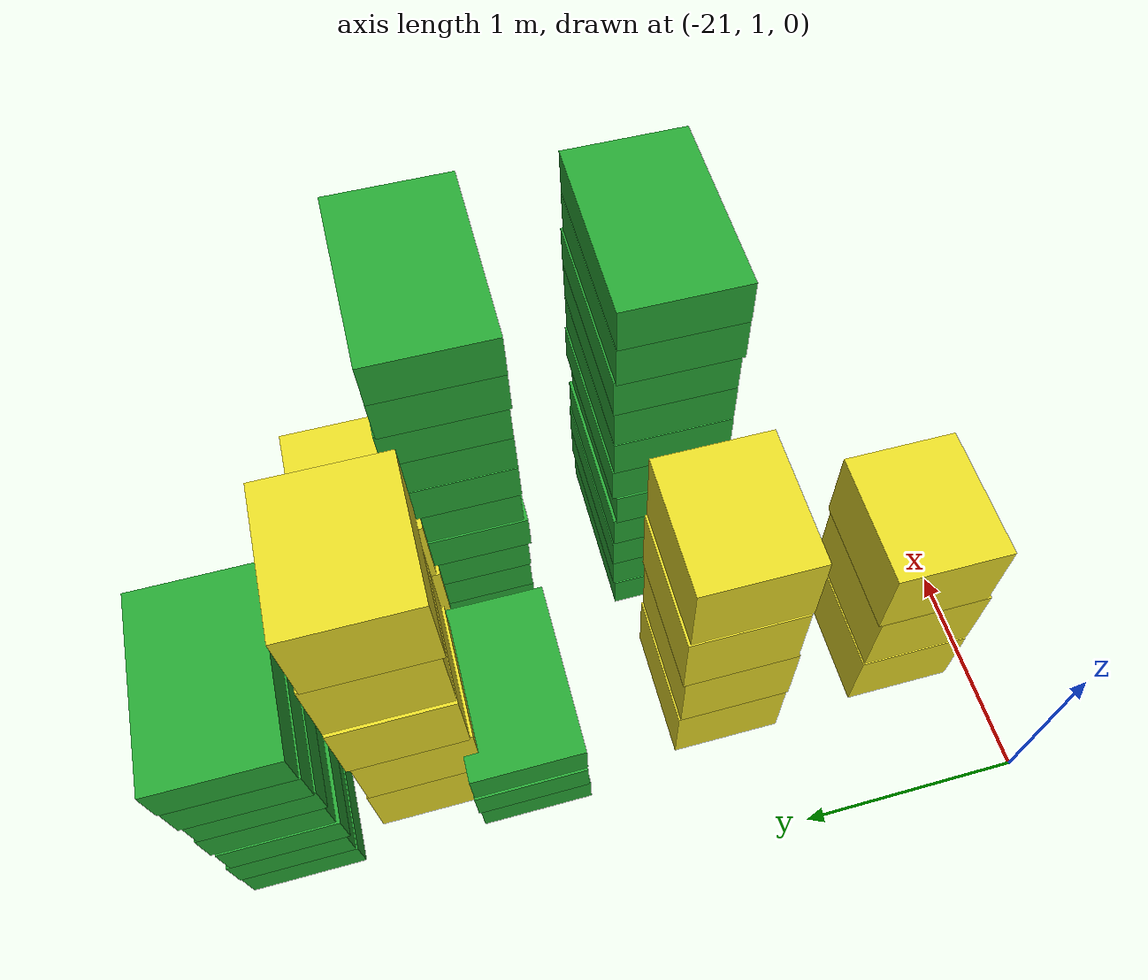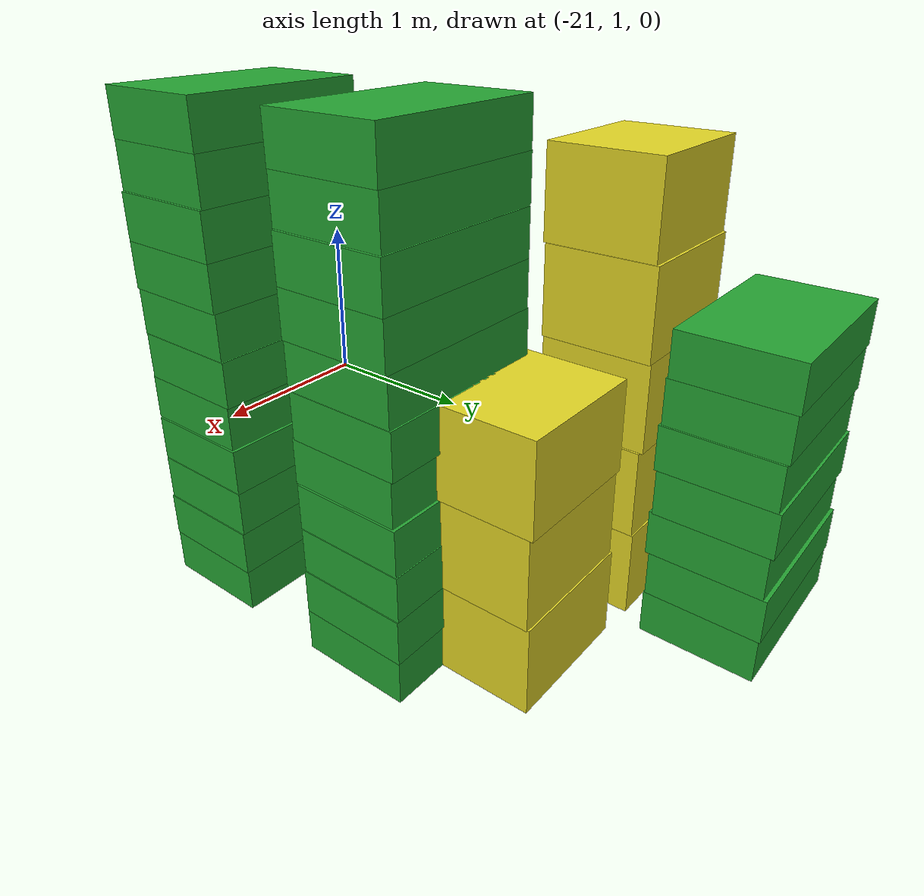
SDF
<sdf version="1.4">
 <model name="factory_baggage_group_A">
  <model name="baggage_C_x3_2">
   <model name="baggage_C_0">
    <static>1</static>
    <link name="link">
     <collision name="collision"><geometry><box><size>0.6 0.5 0.4</size></box></geometry></collision>
     <visual name="visual">
      <geometry><box><size>0.6 0.5 0.4</size></box></geometry>
      <material>
       <script><uri>file://media/materials/scripts/gazebo.material</uri><name>Gazebo/Yellow</name></script>
      </material>
     </visual>
    </link>
    <pose>0 0 0.2 0 -0 0</pose>
   </model>
   <model name="baggage_C_1">
    <static>1</static>
    <link name="link">
     <collision name="collision"><geometry><box><size>0.6 0.5 0.4</size></box></geometry></collision>
     <visual name="visual">
      <geometry><box><size>0.6 0.5 0.4</size></box></geometry>
      <material>
       <script><uri>file://media/materials/scripts/gazebo.material</uri><name>Gazebo/Yellow</name></script>
      </material>
     </visual>
    </link>
    <pose>0.0062 -0.0069 0.6 0 -0 0</pose>
   </model>
   <model name="baggage_C_2">
    <static>1</static>
    <link name="link">
     <collision name="collision"><geometry><box><size>0.6 0.5 0.4</size></box></geometry></collision>
     <visual name="visual">
      <geometry><box><size>0.6 0.5 0.4</size></box></geometry>
      <material>
       <script><uri>file://media/materials/scripts/gazebo.material</uri><name>Gazebo/Yellow</name></script>
      </material>
     </visual>
    </link>
    <pose>0.0089 0.0083 1 0 -0 0</pose>
   </model>
   <pose>-20.1926 1.35849 0 0 -0 0</pose>
  </model>
  <model name="baggage_C_x4_0">
   <model name="baggage_C_0">
    <static>1</static>
    <link name="link">
     <collision name="collision"><geometry><box><size>0.6 0.5 0.4</size></box></geometry></collision>
     <visual name="visual">
      <geometry><box><size>0.6 0.5 0.4</size></box></geometry>
      <material>
       <script><uri>file://media/materials/scripts/gazebo.material</uri><name>Gazebo/Yellow</name></script>
      </material>
     </visual>
    </link>
    <pose>0 0 0.2 0 -0 0</pose>
   </model>
   <model name="baggage_C_1">
    <static>1</static>
    <link name="link">
     <collision name="collision"><geometry><box><size>0.6 0.5 0.4</size></box></geometry></collision>
     <visual name="visual">
      <geometry><box><size>0.6 0.5 0.4</size></box></geometry>
      <material>
       <script><uri>file://media/materials/scripts/gazebo.material</uri><name>Gazebo/Yellow</name></script>
      </material>
     </visual>
    </link>
    <pose>0.0008 -0.0083 0.6 0 -0 0</pose>
   </model>
   <model name="baggage_C_2">
    <static>1</static>
    <link name="link">
     <collision name="collision"><geometry><box><size>0.6 0.5 0.4</size></box></geometry></collision>
     <visual name="visual">
      <geometry><box><size>0.6 0.5 0.4</size></box></geometry>
      <material>
       <script><uri>file://media/materials/scripts/gazebo.material</uri><name>Gazebo/Yellow</name></script>
      </material>
     </visual>
    </link>
    <pose>0.0001 0.0014 1 0 -0 0</pose>
   </model>
   <model name="baggage_C_3">
    <static>1</static>
    <link name="link">
     <collision name="collision"><geometry><box><size>0.6 0.5 0.4</size></box></geometry></collision>
     <visual name="visual">
      <geometry><box><size>0.6 0.5 0.4</size></box></geometry>
      <material>
       <script><uri>file://media/materials/scripts/gazebo.material</uri><name>Gazebo/Yellow</name></script>
      </material>
     </visual>
    </link>
    <pose>0.007 -0.0089 1.4 0 -0 0</pose>
   </model>
   <pose>-20.2232 2.23903 0 0 -0 0</pose>
  </model>
  <model name="baggage_D_x11">
   <model name="baggage_D_0">
    <static>1</static>
    <link name="link">
     <collision name="collision"><geometry><box><size>0.8 0.5 0.2</size></box></geometry></collision>
     <visual name="visual">
      <geometry><box><size>0.8 0.5 0.2</size></box></geometry>
      <material>
       <script><uri>file://media/materials/scripts/gazebo.material</uri><name>Gazebo/Green</name></script>
      </material>
     </visual>
    </link>
    <pose>0 0 0.1 0 -0 0</pose>
   </model>
   <model name="baggage_D_1">
    <static>1</static>
    <link name="link">
     <collision name="collision"><geometry><box><size>0.8 0.5 0.2</size></box></geometry></collision>
     <visual name="visual">
      <geometry><box><size>0.8 0.5 0.2</size></box></geometry>
      <material>
       <script><uri>file://media/materials/scripts/gazebo.material</uri><name>Gazebo/Green</name></script>
      </material>
     </visual>
    </link>
    <pose>0.0069 0.0078 0.3 0 -0 0</pose>
   </model>
   <model name="baggage_D_2">
    <static>1</static>
    <link name="link">
     <collision name="collision"><geometry><box><size>0.8 0.5 0.2</size></box></geometry></collision>
     <visual name="visual">
      <geometry><box><size>0.8 0.5 0.2</size></box></geometry>
      <material>
       <script><uri>file://media/materials/scripts/gazebo.material</uri><name>Gazebo/Green</name></script>
      </material>
     </visual>
    </link>
    <pose>0.0035 0.01 0.5 0 -0 0</pose>
   </model>
   <model name="baggage_D_3">
    <static>1</static>
    <link name="link">
     <collision name="collision"><geometry><box><size>0.8 0.5 0.2</size></box></geometry></collision>
     <visual name="visual">
      <geometry><box><size>0.8 0.5 0.2</size></box></geometry>
      <material>
       <script><uri>file://media/materials/scripts/gazebo.material</uri><name>Gazebo/Green</name></script>
      </material>
     </visual>
    </link>
    <pose>0.0009 0.0056 0.7 0 -0 0</pose>
   </model>
   <model name="baggage_D_4">
    <static>1</static>
    <link name="link">
     <collision name="collision"><geometry><box><size>0.8 0.5 0.2</size></box></geometry></collision>
     <visual name="visual">
      <geometry><box><size>0.8 0.5 0.2</size></box></geometry>
      <material>
       <script><uri>file://media/materials/scripts/gazebo.material</uri><name>Gazebo/Green</name></script>
      </material>
     </visual>
    </link>
    <pose>-0.0074 -0.0079 0.9 0 -0 0</pose>
   </model>
   <model name="baggage_D_5">
    <static>1</static>
    <link name="link">
     <collision name="collision"><geometry><box><size>0.8 0.5 0.2</size></box></geometry></collision>
     <visual name="visual">
      <geometry><box><size>0.8 0.5 0.2</size></box></geometry>
      <material>
       <script><uri>file://media/materials/scripts/gazebo.material</uri><name>Gazebo/Green</name></script>
      </material>
     </visual>
    </link>
    <pose>0.0011 0.0099 1.1 0 -0 0</pose>
   </model>
   <model name="baggage_D_6">
    <static>1</static>
    <link name="link">
     <collision name="collision"><geometry><box><size>0.8 0.5 0.2</size></box></geometry></collision>
     <visual name="visual">
      <geometry><box><size>0.8 0.5 0.2</size></box></geometry>
      <material>
       <script><uri>file://media/materials/scripts/gazebo.material</uri><name>Gazebo/Green</name></script>
      </material>
     </visual>
    </link>
    <pose>-0.0009 0.0022 1.3 0 -0 0</pose>
   </model>
   <model name="baggage_D_7">
    <static>1</static>
    <link name="link">
     <collision name="collision"><geometry><box><size>0.8 0.5 0.2</size></box></geometry></collision>
     <visual name="visual">
      <geometry><box><size>0.8 0.5 0.2</size></box></geometry>
      <material>
       <script><uri>file://media/materials/scripts/gazebo.material</uri><name>Gazebo/Green</name></script>
      </material>
     </visual>
    </link>
    <pose>0.0046 0.0014 1.5 0 -0 0</pose>
   </model>
   <model name="baggage_D_8">
    <static>1</static>
    <link name="link">
     <collision name="collision"><geometry><box><size>0.8 0.5 0.2</size></box></geometry></collision>
     <visual name="visual">
      <geometry><box><size>0.8 0.5 0.2</size></box></geometry>
      <material>
       <script><uri>file://media/materials/scripts/gazebo.material</uri><name>Gazebo/Green</name></script>
      </material>
     </visual>
    </link>
    <pose>0.0052 0.0021 1.7 0 -0 0</pose>
   </model>
   <model name="baggage_D_9">
    <static>1</static>
    <link name="link">
     <collision name="collision"><geometry><box><size>0.8 0.5 0.2</size></box></geometry></collision>
     <visual name="visual">
      <geometry><box><size>0.8 0.5 0.2</size></box></geometry>
      <material>
       <script><uri>file://media/materials/scripts/gazebo.material</uri><name>Gazebo/Green</name></script>
      </material>
     </visual>
    </link>
    <pose>-0.0068 -0.0054 1.9 0 -0 0</pose>
   </model>
   <model name="baggage_D_10">
    <static>1</static>
    <link name="link">
     <collision name="collision"><geometry><box><size>0.8 0.5 0.2</size></box></geometry></collision>
     <visual name="visual">
      <geometry><box><size>0.8 0.5 0.2</size></box></geometry>
      <material>
       <script><uri>file://media/materials/scripts/gazebo.material</uri><name>Gazebo/Green</name></script>
      </material>
     </visual>
    </link>
    <pose>-0.0064 -0.0067 2.1 0 -0 0</pose>
   </model>
   <pose>-19.2962 2.30348 0 0 -0 0</pose>
  </model>
  <model name="baggage_D_x3_2">
   <model name="baggage_D_0">
    <static>1</static>
    <link name="link">
     <collision name="collision"><geometry><box><size>0.8 0.5 0.2</size></box></geometry></collision>
     <visual name="visual">
      <geometry><box><size>0.8 0.5 0.2</size></box></geometry>
      <material>
       <script><uri>file://media/materials/scripts/gazebo.material</uri><name>Gazebo/Green</name></script>
      </material>
     </visual>
    </link>
    <pose>0 0 0.1 0 -0 0</pose>
   </model>
   <model name="baggage_D_1">
    <static>1</static>
    <link name="link">
     <collision name="collision"><geometry><box><size>0.8 0.5 0.2</size></box></geometry></collision>
     <visual name="visual">
      <geometry><box><size>0.8 0.5 0.2</size></box></geometry>
      <material>
       <script><uri>file://media/materials/scripts/gazebo.material</uri><name>Gazebo/Green</name></script>
      </material>
     </visual>
    </link>
    <pose>-0.0056 0.0083 0.3 0 -0 0</pose>
   </model>
   <model name="baggage_D_2">
    <static>1</static>
    <link name="link">
     <collision name="collision"><geometry><box><size>0.8 0.5 0.2</size></box></geometry></collision>
     <visual name="visual">
      <geometry><box><size>0.8 0.5 0.2</size></box></geometry>
      <material>
       <script><uri>file://media/materials/scripts/gazebo.material</uri><name>Gazebo/Green</name></script>
      </material>
     </visual>
    </link>
    <pose>0.0053 0.0057 0.5 0 -0 0</pose>
   </model>
   <pose>-20.2273 3.1731 0 0 -0 0</pose>
  </model>
  <model name="baggage_D_x11_0">
   <model name="baggage_D_0">
    <static>1</static>
    <link name="link">
     <collision name="collision"><geometry><box><size>0.8 0.5 0.2</size></box></geometry></collision>
     <visual name="visual">
      <geometry><box><size>0.8 0.5 0.2</size></box></geometry>
      <material>
       <script><uri>file://media/materials/scripts/gazebo.material</uri><name>Gazebo/Green</name></script>
      </material>
     </visual>
    </link>
    <pose>0 0 0.1 0 -0 0</pose>
   </model>
   <model name="baggage_D_1">
    <static>1</static>
    <link name="link">
     <collision name="collision"><geometry><box><size>0.8 0.5 0.2</size></box></geometry></collision>
     <visual name="visual">
      <geometry><box><size>0.8 0.5 0.2</size></box></geometry>
      <material>
       <script><uri>file://media/materials/scripts/gazebo.material</uri><name>Gazebo/Green</name></script>
      </material>
     </visual>
    </link>
    <pose>0.0069 0.0078 0.3 0 -0 0</pose>
   </model>
   <model name="baggage_D_2">
    <static>1</static>
    <link name="link">
     <collision name="collision"><geometry><box><size>0.8 0.5 0.2</size></box></geometry></collision>
     <visual name="visual">
      <geometry><box><size>0.8 0.5 0.2</size></box></geometry>
      <material>
       <script><uri>file://media/materials/scripts/gazebo.material</uri><name>Gazebo/Green</name></script>
      </material>
     </visual>
    </link>
    <pose>0.0035 0.01 0.5 0 -0 0</pose>
   </model>
   <model name="baggage_D_3">
    <static>1</static>
    <link name="link">
     <collision name="collision"><geometry><box><size>0.8 0.5 0.2</size></box></geometry></collision>
     <visual name="visual">
      <geometry><box><size>0.8 0.5 0.2</size></box></geometry>
      <material>
       <script><uri>file://media/materials/scripts/gazebo.material</uri><name>Gazebo/Green</name></script>
      </material>
     </visual>
    </link>
    <pose>0.0009 0.0056 0.7 0 -0 0</pose>
   </model>
   <model name="baggage_D_4">
    <static>1</static>
    <link name="link">
     <collision name="collision"><geometry><box><size>0.8 0.5 0.2</size></box></geometry></collision>
     <visual name="visual">
      <geometry><box><size>0.8 0.5 0.2</size></box></geometry>
      <material>
       <script><uri>file://media/materials/scripts/gazebo.material</uri><name>Gazebo/Green</name></script>
      </material>
     </visual>
    </link>
    <pose>-0.0074 -0.0079 0.9 0 -0 0</pose>
   </model>
   <model name="baggage_D_5">
    <static>1</static>
    <link name="link">
     <collision name="collision"><geometry><box><size>0.8 0.5 0.2</size></box></geometry></collision>
     <visual name="visual">
      <geometry><box><size>0.8 0.5 0.2</size></box></geometry>
      <material>
       <script><uri>file://media/materials/scripts/gazebo.material</uri><name>Gazebo/Green</name></script>
      </material>
     </visual>
    </link>
    <pose>0.0011 0.0099 1.1 0 -0 0</pose>
   </model>
   <model name="baggage_D_6">
    <static>1</static>
    <link name="link">
     <collision name="collision"><geometry><box><size>0.8 0.5 0.2</size></box></geometry></collision>
     <visual name="visual">
      <geometry><box><size>0.8 0.5 0.2</size></box></geometry>
      <material>
       <script><uri>file://media/materials/scripts/gazebo.material</uri><name>Gazebo/Green</name></script>
      </material>
     </visual>
    </link>
    <pose>-0.0009 0.0022 1.3 0 -0 0</pose>
   </model>
   <model name="baggage_D_7">
    <static>1</static>
    <link name="link">
     <collision name="collision"><geometry><box><size>0.8 0.5 0.2</size></box></geometry></collision>
     <visual name="visual">
      <geometry><box><size>0.8 0.5 0.2</size></box></geometry>
      <material>
       <script><uri>file://media/materials/scripts/gazebo.material</uri><name>Gazebo/Green</name></script>
      </material>
     </visual>
    </link>
    <pose>0.0046 0.0014 1.5 0 -0 0</pose>
   </model>
   <model name="baggage_D_8">
    <static>1</static>
    <link name="link">
     <collision name="collision"><geometry><box><size>0.8 0.5 0.2</size></box></geometry></collision>
     <visual name="visual">
      <geometry><box><size>0.8 0.5 0.2</size></box></geometry>
      <material>
       <script><uri>file://media/materials/scripts/gazebo.material</uri><name>Gazebo/Green</name></script>
      </material>
     </visual>
    </link>
    <pose>0.0052 0.0021 1.7 0 -0 0</pose>
   </model>
   <model name="baggage_D_9">
    <static>1</static>
    <link name="link">
     <collision name="collision"><geometry><box><size>0.8 0.5 0.2</size></box></geometry></collision>
     <visual name="visual">
      <geometry><box><size>0.8 0.5 0.2</size></box></geometry>
      <material>
       <script><uri>file://media/materials/scripts/gazebo.material</uri><name>Gazebo/Green</name></script>
      </material>
     </visual>
    </link>
    <pose>-0.0068 -0.0054 1.9 0 -0 0</pose>
   </model>
   <model name="baggage_D_10">
    <static>1</static>
    <link name="link">
     <collision name="collision"><geometry><box><size>0.8 0.5 0.2</size></box></geometry></collision>
     <visual name="visual">
      <geometry><box><size>0.8 0.5 0.2</size></box></geometry>
      <material>
       <script><uri>file://media/materials/scripts/gazebo.material</uri><name>Gazebo/Green</name></script>
      </material>
     </visual>
    </link>
    <pose>-0.0064 -0.0067 2.1 0 -0 0</pose>
   </model>
   <pose>-19.2952 3.1927 0 0 -0 0</pose>
  </model>
  <model name="baggage_C_x5">
   <model name="baggage_C_0">
    <static>1</static>
    <link name="link">
     <collision name="collision"><geometry><box><size>0.6 0.5 0.4</size></box></geometry></collision>
     <visual name="visual">
      <geometry><box><size>0.6 0.5 0.4</size></box></geometry>
      <material>
       <script><uri>file://media/materials/scripts/gazebo.material</uri><name>Gazebo/Yellow</name></script>
      </material>
     </visual>
    </link>
    <pose>0 0 0.2 0 -0 0</pose>
   </model>
   <model name="baggage_C_1">
    <static>1</static>
    <link name="link">
     <collision name="collision"><geometry><box><size>0.6 0.5 0.4</size></box></geometry></collision>
     <visual name="visual">
      <geometry><box><size>0.6 0.5 0.4</size></box></geometry>
      <material>
       <script><uri>file://media/materials/scripts/gazebo.material</uri><name>Gazebo/Yellow</name></script>
      </material>
     </visual>
    </link>
    <pose>0.0004 -0.0065 0.6 0 -0 0</pose>
   </model>
   <model name="baggage_C_2">
    <static>1</static>
    <link name="link">
     <collision name="collision"><geometry><box><size>0.6 0.5 0.4</size></box></geometry></collision>
     <visual name="visual">
      <geometry><box><size>0.6 0.5 0.4</size></box></geometry>
      <material>
       <script><uri>file://media/materials/scripts/gazebo.material</uri><name>Gazebo/Yellow</name></script>
      </material>
     </visual>
    </link>
    <pose>-0.0097 0.0061 1 0 -0 0</pose>
   </model>
   <model name="baggage_C_3">
    <static>1</static>
    <link name="link">
     <collision name="collision"><geometry><box><size>0.6 0.5 0.4</size></box></geometry></collision>
     <visual name="visual">
      <geometry><box><size>0.6 0.5 0.4</size></box></geometry>
      <material>
       <script><uri>file://media/materials/scripts/gazebo.material</uri><name>Gazebo/Yellow</name></script>
      </material>
     </visual>
    </link>
    <pose>0.0039 0.0077 1.4 0 -0 0</pose>
   </model>
   <model name="baggage_C_4">
    <static>1</static>
    <link name="link">
     <collision name="collision"><geometry><box><size>0.6 0.5 0.4</size></box></geometry></collision>
     <visual name="visual">
      <geometry><box><size>0.6 0.5 0.4</size></box></geometry>
      <material>
       <script><uri>file://media/materials/scripts/gazebo.material</uri><name>Gazebo/Yellow</name></script>
      </material>
     </visual>
    </link>
    <pose>-0.0001 -0.0044 1.8 0 -0 0</pose>
   </model>
   <pose>-20.2035 3.62128 0 0 -0 0</pose>
  </model>
  <model name="baggage_C_x3_3">
   <model name="baggage_C_0">
    <static>1</static>
    <link name="link">
     <collision name="collision"><geometry><box><size>0.6 0.5 0.4</size></box></geometry></collision>
     <visual name="visual">
      <geometry><box><size>0.6 0.5 0.4</size></box></geometry>
      <material>
       <script><uri>file://media/materials/scripts/gazebo.material</uri><name>Gazebo/Yellow</name></script>
      </material>
     </visual>
    </link>
    <pose>0 0 0.2 0 -0 0</pose>
   </model>
   <model name="baggage_C_1">
    <static>1</static>
    <link name="link">
     <collision name="collision"><geometry><box><size>0.6 0.5 0.4</size></box></geometry></collision>
     <visual name="visual">
      <geometry><box><size>0.6 0.5 0.4</size></box></geometry>
      <material>
       <script><uri>file://media/materials/scripts/gazebo.material</uri><name>Gazebo/Yellow</name></script>
      </material>
     </visual>
    </link>
    <pose>0.0062 -0.0069 0.6 0 -0 0</pose>
   </model>
   <model name="baggage_C_2">
    <static>1</static>
    <link name="link">
     <collision name="collision"><geometry><box><size>0.6 0.5 0.4</size></box></geometry></collision>
     <visual name="visual">
      <geometry><box><size>0.6 0.5 0.4</size></box></geometry>
      <material>
       <script><uri>file://media/materials/scripts/gazebo.material</uri><name>Gazebo/Yellow</name></script>
      </material>
     </visual>
    </link>
    <pose>0.0089 0.0083 1 0 -0 0</pose>
   </model>
   <pose>-19.4527 3.60719 0 0 -0 0</pose>
  </model>
  <model name="baggage_B_x5_6">
   <model name="baggage_B_0">
    <static>1</static>
    <link name="link">
     <collision name="collision"><geometry><box><size>0.65 0.45 0.2</size></box></geometry></collision>
     <visual name="visual">
      <geometry><box><size>0.65 0.45 0.2</size></box></geometry>
      <material>
       <script><uri>file://media/materials/scripts/gazebo.material</uri><name>Gazebo/Blue</name></script>
      </material>
     </visual>
    </link>
    <pose>0 0 0.1 0 -0 0</pose>
   </model>
   <model name="baggage_B_1">
    <static>1</static>
    <link name="link">
     <collision name="collision"><geometry><box><size>0.65 0.45 0.2</size></box></geometry></collision>
     <visual name="visual">
      <geometry><box><size>0.65 0.45 0.2</size></box></geometry>
      <material>
       <script><uri>file://media/materials/scripts/gazebo.material</uri><name>Gazebo/Blue</name></script>
      </material>
     </visual>
    </link>
    <pose>-0.0014 -0.0091 0.3 0 -0 0</pose>
   </model>
   <model name="baggage_B_2">
    <static>1</static>
    <link name="link">
     <collision name="collision"><geometry><box><size>0.65 0.45 0.2</size></box></geometry></collision>
     <visual name="visual">
      <geometry><box><size>0.65 0.45 0.2</size></box></geometry>
      <material>
       <script><uri>file://media/materials/scripts/gazebo.material</uri><name>Gazebo/Blue</name></script>
      </material>
     </visual>
    </link>
    <pose>0.0076 -0.0066 0.5 0 -0 0</pose>
   </model>
   <model name="baggage_B_3">
    <static>1</static>
    <link name="link">
     <collision name="collision"><geometry><box><size>0.65 0.45 0.2</size></box></geometry></collision>
     <visual name="visual">
      <geometry><box><size>0.65 0.45 0.2</size></box></geometry>
      <material>
       <script><uri>file://media/materials/scripts/gazebo.material</uri><name>Gazebo/Blue</name></script>
      </material>
     </visual>
    </link>
    <pose>0 -0.0032 0.7 0 -0 0</pose>
   </model>
   <model name="baggage_B_4">
    <static>1</static>
    <link name="link">
     <collision name="collision"><geometry><box><size>0.65 0.45 0.2</size></box></geometry></collision>
     <visual name="visual">
      <geometry><box><size>0.65 0.45 0.2</size></box></geometry>
      <material>
       <script><uri>file://media/materials/scripts/gazebo.material</uri><name>Gazebo/Blue</name></script>
      </material>
     </visual>
    </link>
    <pose>0.0023 0.0073 0.9 0 -0 0</pose>
   </model>
   <pose>-20.2671 4.22693 0 0 -0 0</pose>
  </model>
  <model name="baggage_D_x7_0">
   <model name="baggage_D_0">
    <static>1</static>
    <link name="link">
     <collision name="collision"><geometry><box><size>0.8 0.5 0.2</size></box></geometry></collision>
     <visual name="visual">
      <geometry><box><size>0.8 0.5 0.2</size></box></geometry>
      <material>
       <script><uri>file://media/materials/scripts/gazebo.material</uri><name>Gazebo/Green</name></script>
      </material>
     </visual>
    </link>
    <pose>0 0 0.1 0 -0 0</pose>
   </model>
   <model name="baggage_D_1">
    <static>1</static>
    <link name="link">
     <collision name="collision"><geometry><box><size>0.8 0.5 0.2</size></box></geometry></collision>
     <visual name="visual">
      <geometry><box><size>0.8 0.5 0.2</size></box></geometry>
      <material>
       <script><uri>file://media/materials/scripts/gazebo.material</uri><name>Gazebo/Green</name></script>
      </material>
     </visual>
    </link>
    <pose>0.0009 0.0063 0.3 0 -0 0</pose>
   </model>
   <model name="baggage_D_2">
    <static>1</static>
    <link name="link">
     <collision name="collision"><geometry><box><size>0.8 0.5 0.2</size></box></geometry></collision>
     <visual name="visual">
      <geometry><box><size>0.8 0.5 0.2</size></box></geometry>
      <material>
       <script><uri>file://media/materials/scripts/gazebo.material</uri><name>Gazebo/Green</name></script>
      </material>
     </visual>
    </link>
    <pose>0.0011 -0.0098 0.5 0 -0 0</pose>
   </model>
   <model name="baggage_D_3">
    <static>1</static>
    <link name="link">
     <collision name="collision"><geometry><box><size>0.8 0.5 0.2</size></box></geometry></collision>
     <visual name="visual">
      <geometry><box><size>0.8 0.5 0.2</size></box></geometry>
      <material>
       <script><uri>file://media/materials/scripts/gazebo.material</uri><name>Gazebo/Green</name></script>
      </material>
     </visual>
    </link>
    <pose>0.0089 0.0055 0.7 0 -0 0</pose>
   </model>
   <model name="baggage_D_4">
    <static>1</static>
    <link name="link">
     <collision name="collision"><geometry><box><size>0.8 0.5 0.2</size></box></geometry></collision>
     <visual name="visual">
      <geometry><box><size>0.8 0.5 0.2</size></box></geometry>
      <material>
       <script><uri>file://media/materials/scripts/gazebo.material</uri><name>Gazebo/Green</name></script>
      </material>
     </visual>
    </link>
    <pose>0.009 -0.0056 0.9 0 -0 0</pose>
   </model>
   <model name="baggage_D_5">
    <static>1</static>
    <link name="link">
     <collision name="collision"><geometry><box><size>0.8 0.5 0.2</size></box></geometry></collision>
     <visual name="visual">
      <geometry><box><size>0.8 0.5 0.2</size></box></geometry>
      <material>
       <script><uri>file://media/materials/scripts/gazebo.material</uri><name>Gazebo/Green</name></script>
      </material>
     </visual>
    </link>
    <pose>0.0001 0.0013 1.1 0 -0 0</pose>
   </model>
   <model name="baggage_D_6">
    <static>1</static>
    <link name="link">
     <collision name="collision"><geometry><box><size>0.8 0.5 0.2</size></box></geometry></collision>
     <visual name="visual">
      <geometry><box><size>0.8 0.5 0.2</size></box></geometry>
      <material>
       <script><uri>file://media/materials/scripts/gazebo.material</uri><name>Gazebo/Green</name></script>
      </material>
     </visual>
    </link>
    <pose>0.0019 0.009 1.3 0 -0 0</pose>
   </model>
   <pose>-20.2436 4.22297 0 0 -0 0</pose>
  </model>
 </model>
</sdf>
